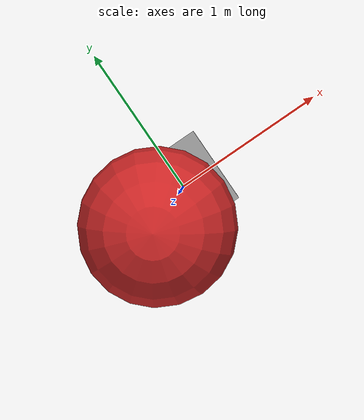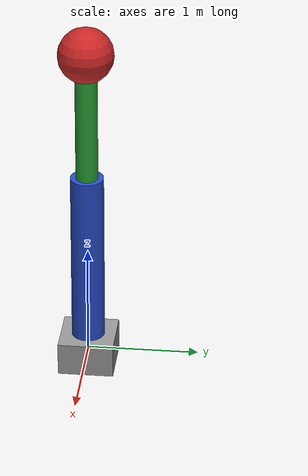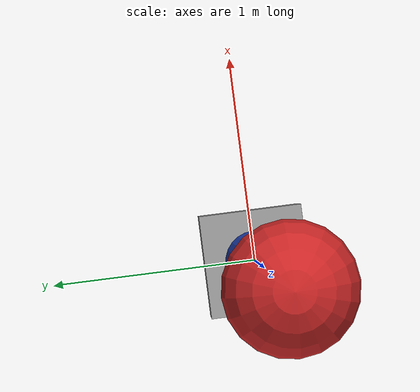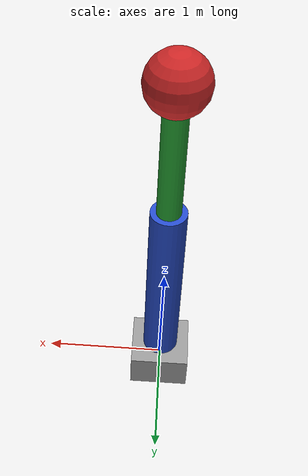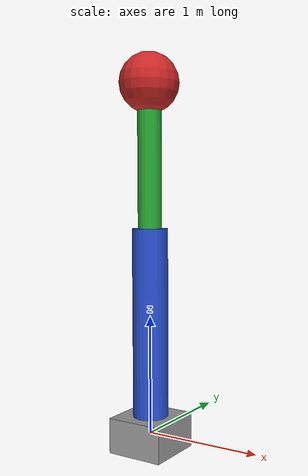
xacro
<?xml version="1.0"?>
<robot xmlns:xacro="http://www.ros.org/wiki/xacro">

    <xacro:arg name="lock_joint1_arg" default="true" />

    <xacro:property name="base_mass" value="10000.0" />
    <xacro:property name="base_dx" value="0.5" />
    <xacro:property name="base_dy" value="0.5" />
    <xacro:property name="base_dz" value="0.3" />
    <xacro:property name="joint1_type" value="revolute" />
    <xacro:property name="joint2_type" value="revolute" />
    <xacro:property name="link1_mass" value="40" />
    <xacro:property name="link1_length" value="1.6" />
    <xacro:property name="link1_radius" value="0.15" />
    <xacro:property name="link2_mass" value="25" />
    <xacro:property name="link2_length" value="1.2" />
    <xacro:property name="link2_radius" value="0.1" />
    <xacro:property name="tooltip_radius" value="0.25" />
    <xacro:property name="tooltip_mass" value="1" />

    <xacro:macro name="cylinder_inertia" params="mass radius length">
        <inertia ixx="${mass * (3*radius*radius + length*length) / 12.0}"
                 iyy="${mass * (3*radius*radius + length*length) / 12.0}"
                 izz="${mass * radius*radius / 2.0}"
                 ixy="0.0" ixz="0.0" iyz="0.0" />
    </xacro:macro>

    <xacro:macro name="box_inertia" params="mass x y z">
        <inertia ixx="${mass / 12.0 * (y*y + z*z)}"
                 iyy="${mass / 12.0 * (x*x + z*z)}"
                 izz="${mass / 12.0 * (x*x + y*y)}"
                 ixy="0.0" ixz="0.0" iyz="0.0" />
    </xacro:macro>

    <xacro:macro name="sphere_inertia" params="mass radius">
        <inertia ixx="${2.0/5.0 * mass * radius*radius}"
                 iyy="${2.0/5.0 * mass * radius*radius}"
                 izz="${2.0/5.0 * mass * radius*radius}"
                 ixy="0.0" ixz="0.0" iyz="0.0" />
    </xacro:macro>

    <link name="base_link">
        <visual>
            <geometry>
                <box size="${base_dx} ${base_dy} ${base_dz}" />
            </geometry>
            <material name="armstrong_grey"/>
        </visual>
        <collision>
            <geometry>
                <box size="${base_dx} ${base_dy} ${base_dz}" />
            </geometry>
        </collision>
        <inertial>
            <mass value="${base_mass}" />
            <origin xyz="0 0 0" rpy="0 0 0" />
            <xacro:box_inertia mass="${base_mass}" x="${base_dx}" y="${base_dy}" z="${base_dz}" />
        </inertial>
    </link>

    <joint name="joint1" type="${joint1_type}">
        <parent link="base_link" />
        <child link="link1" />
        <origin xyz="0 0 ${base_dz/2}" rpy="0 0 0" />
        <axis xyz="0 1 0" />
        <!-- Conditional limits for joint1 -->
        <xacro:if value="${$(arg lock_joint1_arg)}">
            <limit lower="0" upper="0" effort="1000" velocity="3.0" />
        </xacro:if>
        <xacro:unless value="${$(arg lock_joint1_arg)}">
            <limit lower="${-pi/2 + pi/4}" upper="${pi/2 - pi/4}" effort="1000" velocity="3.0" />
        </xacro:unless>
        <limit lower="0" upper="0" effort="1000" velocity="3.0" />
        <dynamics damping="0.1" friction="0.1"/>
    </joint>

    <link name="link1">
        <visual>
            <origin xyz="0 0 ${link1_length/2}" rpy="0 0 0" />
            <geometry>
                <cylinder radius="${link1_radius}" length="${link1_length}" />
            </geometry>
            <material name="armstrong_blue"/> </visual>
        <collision>
            <origin xyz="0 0 ${link1_length/2}" rpy="0 0 0" />
            <geometry>
                <cylinder radius="${link1_radius}" length="${link1_length}" />
            </geometry>
        </collision>
        <inertial>
            <mass value="${link1_mass}" />
            <origin xyz="0 0 ${link1_length/2}" rpy="0 0 0" />
            <xacro:cylinder_inertia mass="${link1_mass}" radius="${link1_radius}" length="${link1_length}" />
        </inertial>
    </link>

    <joint name="joint2" type="${joint2_type}">
        <parent link="link1" />
        <child link="link2" />
        <origin xyz="0 0 ${link1_length}" rpy="0 0 0" />
        <axis xyz="0 1 0" />
        <limit lower="${-pi/2}" upper="${pi/2}" effort="300" velocity="3.0" />
        <dynamics damping="0.1" friction="0.1"/>
    </joint>

    <link name="link2">
        <visual>
            <origin xyz="0 0 ${link2_length/2}" rpy="0 0 0" />
            <geometry>
                <cylinder radius="${link2_radius}" length="${link2_length}" />
            </geometry>
            <material name="armstrong_green"/> </visual>
        <collision>
            <origin xyz="0 0 ${link2_length/2}" rpy="0 0 0" />
            <geometry>
                <cylinder radius="${link2_radius}" length="${link2_length}" />
            </geometry>
        </collision>
        <inertial>
            <mass value="${link2_mass}" />
            <origin xyz="0 0 ${link2_length/2}" rpy="0 0 0" />
            <xacro:cylinder_inertia mass="${link2_mass}" radius="${link2_radius}" length="${link2_length}" />
        </inertial>
    </link>

    <link name="tool_tip">
        <visual>
            <geometry>
                <sphere radius="${tooltip_radius}" />
            </geometry>
            <material name="armstrong_red"/> </visual>
        <collision>
            <geometry>
                <sphere radius="${tooltip_radius}" />
            </geometry>
        </collision>
        <inertial>
            <mass value="${tooltip_mass}" />
            <origin xyz="0 0 0" rpy="0 0 0" />
            <xacro:sphere_inertia mass="${tooltip_mass}" radius="${tooltip_radius}" />
        </inertial>
    </link>

    <joint name="joint_tool_tip" type="fixed">
        <parent link="link2"/>
        <child link="tool_tip"/>
        <origin xyz="0 0 ${link2_length}" rpy="0 0 0"/>
    </joint>

</robot>
